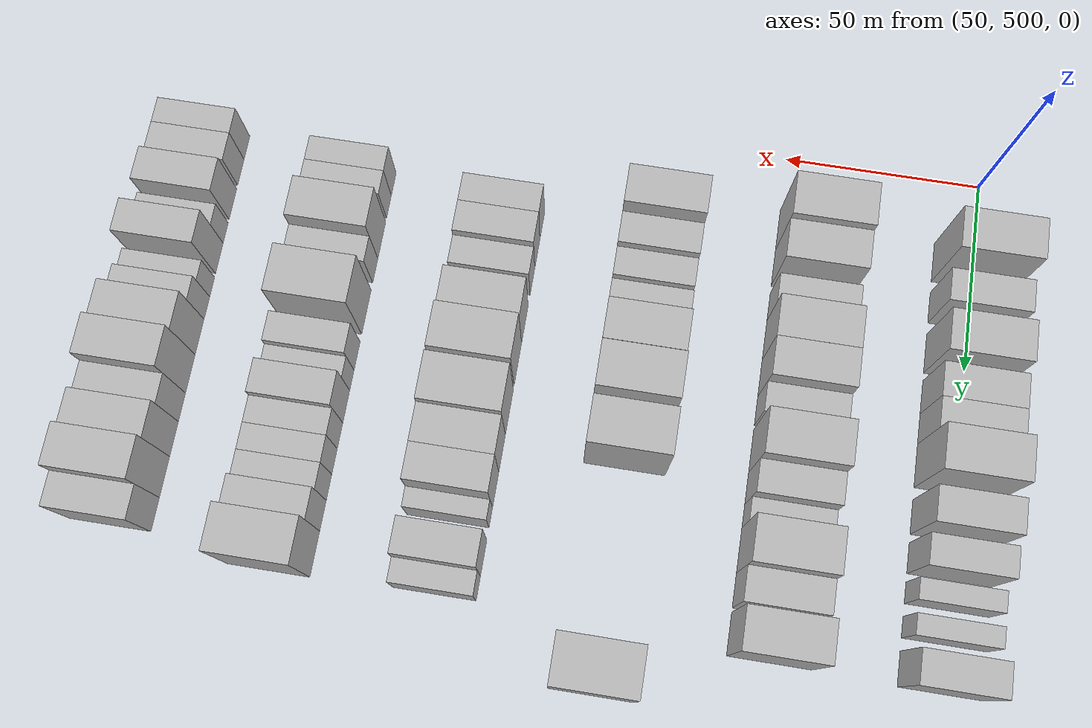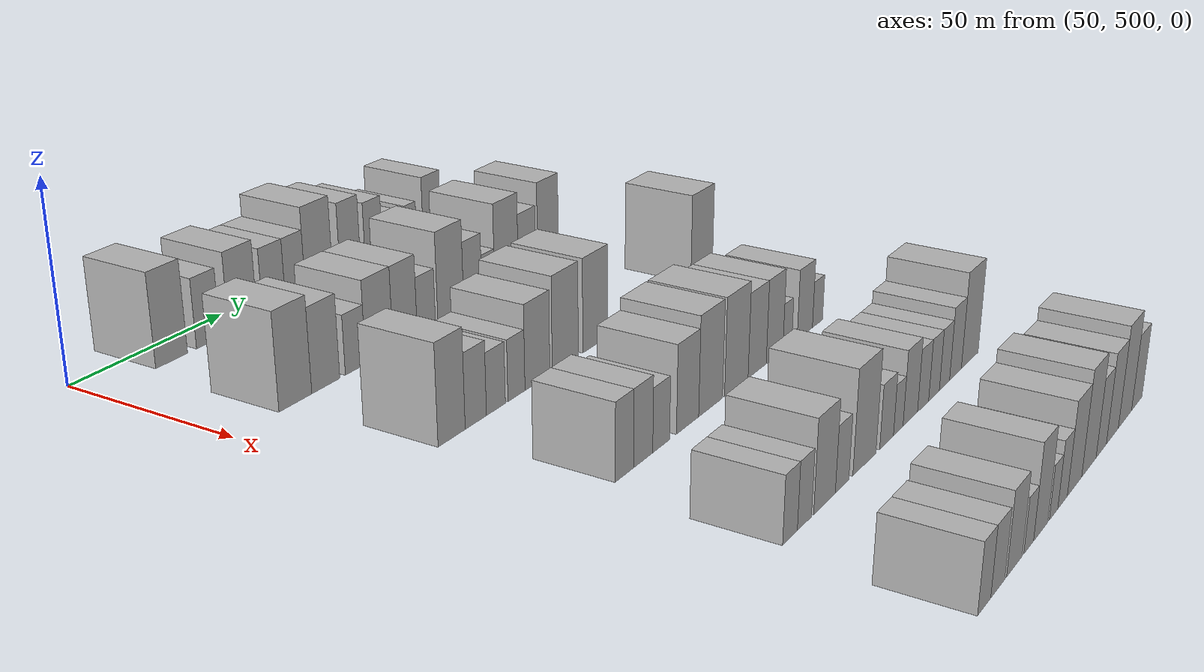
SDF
<sdf version="1.6">
 <world name="default">
  <model name="building_132">
   <static>1</static>
   <pose>50.0000 522.5997 0 0.000000 0.000000 0.000000</pose>
   <link name="link">
    <pose>0 0 12.00 0 0 0</pose>
    <collision name="collision"><geometry><box><size>20.0000 10.4409 24.0000</size></box></geometry></collision>
    <visual name="visual">
     <cast_shadows>0</cast_shadows>
     <geometry><box><size>20.0000 10.4409 24.0000</size></box></geometry>
     <material>
      <script>
       <uri>model://HANNAS_wall/materials/scripts</uri>
       <uri>model://HANNAS_wall/materials/textures</uri>
       <name>vrc/HANNAS_wall</name>
      </script>
     </material>
    </visual>
   </link>
  </model>
  <model name="building_133">
   <static>1</static>
   <pose>50.0000 534.9122 0 0.000000 0.000000 0.000000</pose>
   <link name="link">
    <pose>0 0 9.00 0 0 0</pose>
    <collision name="collision"><geometry><box><size>20.0000 8.1841 18.0000</size></box></geometry></collision>
    <visual name="visual">
     <cast_shadows>0</cast_shadows>
     <geometry><box><size>20.0000 8.1841 18.0000</size></box></geometry>
     <material>
      <script>
       <uri>model://HANNAS_wall/materials/scripts</uri>
       <uri>model://HANNAS_wall/materials/textures</uri>
       <name>vrc/HANNAS_wall</name>
      </script>
     </material>
    </visual>
   </link>
  </model>
  <model name="building_134">
   <static>1</static>
   <pose>50.0000 547.1386 0 0.000000 0.000000 0.000000</pose>
   <link name="link">
    <pose>0 0 10.50 0 0 0</pose>
    <collision name="collision"><geometry><box><size>20.0000 10.2687 21.0000</size></box></geometry></collision>
    <visual name="visual">
     <cast_shadows>0</cast_shadows>
     <geometry><box><size>20.0000 10.2687 21.0000</size></box></geometry>
     <material>
      <script>
       <uri>model://HANNAS_wall/materials/scripts</uri>
       <uri>model://HANNAS_wall/materials/textures</uri>
       <name>vrc/HANNAS_wall</name>
      </script>
     </material>
    </visual>
   </link>
  </model>
  <model name="building_135">
   <static>1</static>
   <pose>50.0000 558.5640 0 0.000000 0.000000 0.000000</pose>
   <link name="link">
    <pose>0 0 9.00 0 0 0</pose>
    <collision name="collision"><geometry><box><size>20.0000 8.5822 18.0000</size></box></geometry></collision>
    <visual name="visual">
     <cast_shadows>0</cast_shadows>
     <geometry><box><size>20.0000 8.5822 18.0000</size></box></geometry>
     <material>
      <script>
       <uri>model://HANNAS_wall/materials/scripts</uri>
       <uri>model://HANNAS_wall/materials/textures</uri>
       <name>vrc/HANNAS_wall</name>
      </script>
     </material>
    </visual>
   </link>
  </model>
  <model name="building_136">
   <static>1</static>
   <pose>50.0000 566.7089 0 0.000000 0.000000 0.000000</pose>
   <link name="link">
    <pose>0 0 9.00 0 0 0</pose>
    <collision name="collision"><geometry><box><size>20.0000 7.7077 18.0000</size></box></geometry></collision>
    <visual name="visual">
     <cast_shadows>0</cast_shadows>
     <geometry><box><size>20.0000 7.7077 18.0000</size></box></geometry>
     <material>
      <script>
       <uri>model://HANNAS_wall/materials/scripts</uri>
       <uri>model://HANNAS_wall/materials/textures</uri>
       <name>vrc/HANNAS_wall</name>
      </script>
     </material>
    </visual>
   </link>
  </model>
  <model name="building_137">
   <static>1</static>
   <pose>50.0000 576.0219 0 0.000000 0.000000 0.000000</pose>
   <link name="link">
    <pose>0 0 12.00 0 0 0</pose>
    <collision name="collision"><geometry><box><size>20.0000 10.9183 24.0000</size></box></geometry></collision>
    <visual name="visual">
     <cast_shadows>0</cast_shadows>
     <geometry><box><size>20.0000 10.9183 24.0000</size></box></geometry>
     <material>
      <script>
       <uri>model://HANNAS_wall/materials/scripts</uri>
       <uri>model://HANNAS_wall/materials/textures</uri>
       <name>vrc/HANNAS_wall</name>
      </script>
     </material>
    </visual>
   </link>
  </model>
  <model name="building_138">
   <static>1</static>
   <pose>50.0000 588.7377 0 0.000000 0.000000 0.000000</pose>
   <link name="link">
    <pose>0 0 10.50 0 0 0</pose>
    <collision name="collision"><geometry><box><size>20.0000 8.5133 21.0000</size></box></geometry></collision>
    <visual name="visual">
     <cast_shadows>0</cast_shadows>
     <geometry><box><size>20.0000 8.5133 21.0000</size></box></geometry>
     <material>
      <script>
       <uri>model://HANNAS_wall/materials/scripts</uri>
       <uri>model://HANNAS_wall/materials/textures</uri>
       <name>vrc/HANNAS_wall</name>
      </script>
     </material>
    </visual>
   </link>
  </model>
  <model name="building_139">
   <static>1</static>
   <pose>50.0000 598.7402 0 0.000000 0.000000 0.000000</pose>
   <link name="link">
    <pose>0 0 9.00 0 0 0</pose>
    <collision name="collision"><geometry><box><size>20.0000 7.4918 18.0000</size></box></geometry></collision>
    <visual name="visual">
     <cast_shadows>0</cast_shadows>
     <geometry><box><size>20.0000 7.4918 18.0000</size></box></geometry>
     <material>
      <script>
       <uri>model://HANNAS_wall/materials/scripts</uri>
       <uri>model://HANNAS_wall/materials/textures</uri>
       <name>vrc/HANNAS_wall</name>
      </script>
     </material>
    </visual>
   </link>
  </model>
  <model name="building_140">
   <static>1</static>
   <pose>50.0000 607.0550 0 0.000000 0.000000 0.000000</pose>
   <link name="link">
    <pose>0 0 6.00 0 0 0</pose>
    <collision name="collision"><geometry><box><size>20.0000 5.1379 12.0000</size></box></geometry></collision>
    <visual name="visual">
     <cast_shadows>0</cast_shadows>
     <geometry><box><size>20.0000 5.1379 12.0000</size></box></geometry>
     <material>
      <script>
       <uri>model://HANNAS_wall/materials/scripts</uri>
       <uri>model://HANNAS_wall/materials/textures</uri>
       <name>vrc/HANNAS_wall</name>
      </script>
     </material>
    </visual>
   </link>
  </model>
  <model name="building_141">
   <static>1</static>
   <pose>50.0000 615.1500 0 0.000000 0.000000 0.000000</pose>
   <link name="link">
    <pose>0 0 6.00 0 0 0</pose>
    <collision name="collision"><geometry><box><size>20.0000 5.0520 12.0000</size></box></geometry></collision>
    <visual name="visual">
     <cast_shadows>0</cast_shadows>
     <geometry><box><size>20.0000 5.0520 12.0000</size></box></geometry>
     <material>
      <script>
       <uri>model://HANNAS_wall/materials/scripts</uri>
       <uri>model://HANNAS_wall/materials/textures</uri>
       <name>vrc/HANNAS_wall</name>
      </script>
     </material>
    </visual>
   </link>
  </model>
  <model name="building_142">
   <static>1</static>
   <pose>50.0000 624.8124 0 0.000000 0.000000 0.000000</pose>
   <link name="link">
    <pose>0 0 9.00 0 0 0</pose>
    <collision name="collision"><geometry><box><size>20.0000 8.2729 18.0000</size></box></geometry></collision>
    <visual name="visual">
     <cast_shadows>0</cast_shadows>
     <geometry><box><size>20.0000 8.2729 18.0000</size></box></geometry>
     <material>
      <script>
       <uri>model://HANNAS_wall/materials/scripts</uri>
       <uri>model://HANNAS_wall/materials/textures</uri>
       <name>vrc/HANNAS_wall</name>
      </script>
     </material>
    </visual>
   </link>
  </model>
  <model name="building_266">
   <static>1</static>
   <pose>90.0000 520.1186 0 0.000000 0.000000 0.000000</pose>
   <link name="link">
    <pose>0 0 12.00 0 0 0</pose>
    <collision name="collision"><geometry><box><size>20.0000 11.0788 24.0000</size></box></geometry></collision>
    <visual name="visual">
     <cast_shadows>0</cast_shadows>
     <geometry><box><size>20.0000 11.0788 24.0000</size></box></geometry>
     <material>
      <script>
       <uri>model://HANNAS_wall/materials/scripts</uri>
       <uri>model://HANNAS_wall/materials/textures</uri>
       <name>vrc/HANNAS_wall</name>
      </script>
     </material>
    </visual>
   </link>
  </model>
  <model name="building_267">
   <static>1</static>
   <pose>90.0000 530.5757 0 0.000000 0.000000 0.000000</pose>
   <link name="link">
    <pose>0 0 10.50 0 0 0</pose>
    <collision name="collision"><geometry><box><size>20.0000 9.8355 21.0000</size></box></geometry></collision>
    <visual name="visual">
     <cast_shadows>0</cast_shadows>
     <geometry><box><size>20.0000 9.8355 21.0000</size></box></geometry>
     <material>
      <script>
       <uri>model://HANNAS_wall/materials/scripts</uri>
       <uri>model://HANNAS_wall/materials/textures</uri>
       <name>vrc/HANNAS_wall</name>
      </script>
     </material>
    </visual>
   </link>
  </model>
  <model name="building_268">
   <static>1</static>
   <pose>90.0000 541.2150 0 0.000000 0.000000 0.000000</pose>
   <link name="link">
    <pose>0 0 7.50 0 0 0</pose>
    <collision name="collision"><geometry><box><size>20.0000 7.4430 15.0000</size></box></geometry></collision>
    <visual name="visual">
     <cast_shadows>0</cast_shadows>
     <geometry><box><size>20.0000 7.4430 15.0000</size></box></geometry>
     <material>
      <script>
       <uri>model://HANNAS_wall/materials/scripts</uri>
       <uri>model://HANNAS_wall/materials/textures</uri>
       <name>vrc/HANNAS_wall</name>
      </script>
     </material>
    </visual>
   </link>
  </model>
  <model name="building_269">
   <static>1</static>
   <pose>90.0000 550.1425 0 0.000000 0.000000 0.000000</pose>
   <link name="link">
    <pose>0 0 10.50 0 0 0</pose>
    <collision name="collision"><geometry><box><size>20.0000 10.4120 21.0000</size></box></geometry></collision>
    <visual name="visual">
     <cast_shadows>0</cast_shadows>
     <geometry><box><size>20.0000 10.4120 21.0000</size></box></geometry>
     <material>
      <script>
       <uri>model://HANNAS_wall/materials/scripts</uri>
       <uri>model://HANNAS_wall/materials/textures</uri>
       <name>vrc/HANNAS_wall</name>
      </script>
     </material>
    </visual>
   </link>
  </model>
  <model name="building_270">
   <static>1</static>
   <pose>90.0000 560.1361 0 0.000000 0.000000 0.000000</pose>
   <link name="link">
    <pose>0 0 10.50 0 0 0</pose>
    <collision name="collision"><geometry><box><size>20.0000 9.5751 21.0000</size></box></geometry></collision>
    <visual name="visual">
     <cast_shadows>0</cast_shadows>
     <geometry><box><size>20.0000 9.5751 21.0000</size></box></geometry>
     <material>
      <script>
       <uri>model://HANNAS_wall/materials/scripts</uri>
       <uri>model://HANNAS_wall/materials/textures</uri>
       <name>vrc/HANNAS_wall</name>
      </script>
     </material>
    </visual>
   </link>
  </model>
  <model name="building_271">
   <static>1</static>
   <pose>90.0000 568.6189 0 0.000000 0.000000 0.000000</pose>
   <link name="link">
    <pose>0 0 7.50 0 0 0</pose>
    <collision name="collision"><geometry><box><size>20.0000 7.3906 15.0000</size></box></geometry></collision>
    <visual name="visual">
     <cast_shadows>0</cast_shadows>
     <geometry><box><size>20.0000 7.3906 15.0000</size></box></geometry>
     <material>
      <script>
       <uri>model://HANNAS_wall/materials/scripts</uri>
       <uri>model://HANNAS_wall/materials/textures</uri>
       <name>vrc/HANNAS_wall</name>
      </script>
     </material>
    </visual>
   </link>
  </model>
  <model name="building_272">
   <static>1</static>
   <pose>90.0000 578.7879 0 0.000000 0.000000 0.000000</pose>
   <link name="link">
    <pose>0 0 12.00 0 0 0</pose>
    <collision name="collision"><geometry><box><size>20.0000 10.9474 24.0000</size></box></geometry></collision>
    <visual name="visual">
     <cast_shadows>0</cast_shadows>
     <geometry><box><size>20.0000 10.9474 24.0000</size></box></geometry>
     <material>
      <script>
       <uri>model://HANNAS_wall/materials/scripts</uri>
       <uri>model://HANNAS_wall/materials/textures</uri>
       <name>vrc/HANNAS_wall</name>
      </script>
     </material>
    </visual>
   </link>
  </model>
  <model name="building_273">
   <static>1</static>
   <pose>90.0000 588.2281 0 0.000000 0.000000 0.000000</pose>
   <link name="link">
    <pose>0 0 9.00 0 0 0</pose>
    <collision name="collision"><geometry><box><size>20.0000 7.9329 18.0000</size></box></geometry></collision>
    <visual name="visual">
     <cast_shadows>0</cast_shadows>
     <geometry><box><size>20.0000 7.9329 18.0000</size></box></geometry>
     <material>
      <script>
       <uri>model://HANNAS_wall/materials/scripts</uri>
       <uri>model://HANNAS_wall/materials/textures</uri>
       <name>vrc/HANNAS_wall</name>
      </script>
     </material>
    </visual>
   </link>
  </model>
  <model name="building_274">
   <static>1</static>
   <pose>90.0000 595.0700 0 0.000000 0.000000 0.000000</pose>
   <link name="link">
    <pose>0 0 6.00 0 0 0</pose>
    <collision name="collision"><geometry><box><size>20.0000 5.7510 12.0000</size></box></geometry></collision>
    <visual name="visual">
     <cast_shadows>0</cast_shadows>
     <geometry><box><size>20.0000 5.7510 12.0000</size></box></geometry>
     <material>
      <script>
       <uri>model://HANNAS_wall/materials/scripts</uri>
       <uri>model://HANNAS_wall/materials/textures</uri>
       <name>vrc/HANNAS_wall</name>
      </script>
     </material>
    </visual>
   </link>
  </model>
  <model name="building_275">
   <static>1</static>
   <pose>90.0000 603.3871 0 0.000000 0.000000 0.000000</pose>
   <link name="link">
    <pose>0 0 12.00 0 0 0</pose>
    <collision name="collision"><geometry><box><size>20.0000 10.8831 24.0000</size></box></geometry></collision>
    <visual name="visual">
     <cast_shadows>0</cast_shadows>
     <geometry><box><size>20.0000 10.8831 24.0000</size></box></geometry>
     <material>
      <script>
       <uri>model://HANNAS_wall/materials/scripts</uri>
       <uri>model://HANNAS_wall/materials/textures</uri>
       <name>vrc/HANNAS_wall</name>
      </script>
     </material>
    </visual>
   </link>
  </model>
  <model name="building_276">
   <static>1</static>
   <pose>90.0000 612.9606 0 0.000000 0.000000 0.000000</pose>
   <link name="link">
    <pose>0 0 9.00 0 0 0</pose>
    <collision name="collision"><geometry><box><size>20.0000 8.2639 18.0000</size></box></geometry></collision>
    <visual name="visual">
     <cast_shadows>0</cast_shadows>
     <geometry><box><size>20.0000 8.2639 18.0000</size></box></geometry>
     <material>
      <script>
       <uri>model://HANNAS_wall/materials/scripts</uri>
       <uri>model://HANNAS_wall/materials/textures</uri>
       <name>vrc/HANNAS_wall</name>
      </script>
     </material>
    </visual>
   </link>
  </model>
  <model name="building_277">
   <static>1</static>
   <pose>90.0000 623.2012 0 0.000000 0.000000 0.000000</pose>
   <link name="link">
    <pose>0 0 12.00 0 0 0</pose>
    <collision name="collision"><geometry><box><size>20.0000 10.2173 24.0000</size></box></geometry></collision>
    <visual name="visual">
     <cast_shadows>0</cast_shadows>
     <geometry><box><size>20.0000 10.2173 24.0000</size></box></geometry>
     <material>
      <script>
       <uri>model://HANNAS_wall/materials/scripts</uri>
       <uri>model://HANNAS_wall/materials/textures</uri>
       <name>vrc/HANNAS_wall</name>
      </script>
     </material>
    </visual>
   </link>
  </model>
  <model name="building_402">
   <static>1</static>
   <pose>130.0000 524.0471 0 0.000000 0.000000 0.000000</pose>
   <link name="link">
    <pose>0 0 12.00 0 0 0</pose>
    <collision name="collision"><geometry><box><size>20.0000 9.8268 24.0000</size></box></geometry></collision>
    <visual name="visual">
     <cast_shadows>0</cast_shadows>
     <geometry><box><size>20.0000 9.8268 24.0000</size></box></geometry>
     <material>
      <script>
       <uri>model://HANNAS_wall/materials/scripts</uri>
       <uri>model://HANNAS_wall/materials/textures</uri>
       <name>vrc/HANNAS_wall</name>
      </script>
     </material>
    </visual>
   </link>
  </model>
  <model name="building_403">
   <static>1</static>
   <pose>130.0000 532.9498 0 0.000000 0.000000 0.000000</pose>
   <link name="link">
    <pose>0 0 9.00 0 0 0</pose>
    <collision name="collision"><geometry><box><size>20.0000 7.9787 18.0000</size></box></geometry></collision>
    <visual name="visual">
     <cast_shadows>0</cast_shadows>
     <geometry><box><size>20.0000 7.9787 18.0000</size></box></geometry>
     <material>
      <script>
       <uri>model://HANNAS_wall/materials/scripts</uri>
       <uri>model://HANNAS_wall/materials/textures</uri>
       <name>vrc/HANNAS_wall</name>
      </script>
     </material>
    </visual>
   </link>
  </model>
  <model name="building_404">
   <static>1</static>
   <pose>130.0000 540.6071 0 0.000000 0.000000 0.000000</pose>
   <link name="link">
    <pose>0 0 7.50 0 0 0</pose>
    <collision name="collision"><geometry><box><size>20.0000 7.3360 15.0000</size></box></geometry></collision>
    <visual name="visual">
     <cast_shadows>0</cast_shadows>
     <geometry><box><size>20.0000 7.3360 15.0000</size></box></geometry>
     <material>
      <script>
       <uri>model://HANNAS_wall/materials/scripts</uri>
       <uri>model://HANNAS_wall/materials/textures</uri>
       <name>vrc/HANNAS_wall</name>
      </script>
     </material>
    </visual>
   </link>
  </model>
  <model name="building_405">
   <static>1</static>
   <pose>130.0000 548.7007 0 0.000000 0.000000 0.000000</pose>
   <link name="link">
    <pose>0 0 7.50 0 0 0</pose>
    <collision name="collision"><geometry><box><size>20.0000 6.8511 15.0000</size></box></geometry></collision>
    <visual name="visual">
     <cast_shadows>0</cast_shadows>
     <geometry><box><size>20.0000 6.8511 15.0000</size></box></geometry>
     <material>
      <script>
       <uri>model://HANNAS_wall/materials/scripts</uri>
       <uri>model://HANNAS_wall/materials/textures</uri>
       <name>vrc/HANNAS_wall</name>
      </script>
     </material>
    </visual>
   </link>
  </model>
  <model name="building_406">
   <static>1</static>
   <pose>130.0000 557.2874 0 0.000000 0.000000 0.000000</pose>
   <link name="link">
    <pose>0 0 10.50 0 0 0</pose>
    <collision name="collision"><geometry><box><size>20.0000 10.3224 21.0000</size></box></geometry></collision>
    <visual name="visual">
     <cast_shadows>0</cast_shadows>
     <geometry><box><size>20.0000 10.3224 21.0000</size></box></geometry>
     <material>
      <script>
       <uri>model://HANNAS_wall/materials/scripts</uri>
       <uri>model://HANNAS_wall/materials/textures</uri>
       <name>vrc/HANNAS_wall</name>
      </script>
     </material>
    </visual>
   </link>
  </model>
  <model name="building_407">
   <static>1</static>
   <pose>130.0000 569.1102 0 0.000000 0.000000 0.000000</pose>
   <link name="link">
    <pose>0 0 12.00 0 0 0</pose>
    <collision name="collision"><geometry><box><size>20.0000 11.3232 24.0000</size></box></geometry></collision>
    <visual name="visual">
     <cast_shadows>0</cast_shadows>
     <geometry><box><size>20.0000 11.3232 24.0000</size></box></geometry>
     <material>
      <script>
       <uri>model://HANNAS_wall/materials/scripts</uri>
       <uri>model://HANNAS_wall/materials/textures</uri>
       <name>vrc/HANNAS_wall</name>
      </script>
     </material>
    </visual>
   </link>
  </model>
  <model name="building_408">
   <static>1</static>
   <pose>130.0000 582.4760 0 0.000000 0.000000 0.000000</pose>
   <link name="link">
    <pose>0 0 12.00 0 0 0</pose>
    <collision name="collision"><geometry><box><size>20.0000 11.4084 24.0000</size></box></geometry></collision>
    <visual name="visual">
     <cast_shadows>0</cast_shadows>
     <geometry><box><size>20.0000 11.4084 24.0000</size></box></geometry>
     <material>
      <script>
       <uri>model://HANNAS_wall/materials/scripts</uri>
       <uri>model://HANNAS_wall/materials/textures</uri>
       <name>vrc/HANNAS_wall</name>
      </script>
     </material>
    </visual>
   </link>
  </model>
  <model name="building_409">
   <static>1</static>
   <pose>130.0000 636.1737 0 0.000000 0.000000 0.000000</pose>
   <link name="link">
    <pose>0 0 12.00 0 0 0</pose>
    <collision name="collision"><geometry><box><size>20.0000 11.9957 24.0000</size></box></geometry></collision>
    <visual name="visual">
     <cast_shadows>0</cast_shadows>
     <geometry><box><size>20.0000 11.9957 24.0000</size></box></geometry>
     <material>
      <script>
       <uri>model://HANNAS_wall/materials/scripts</uri>
       <uri>model://HANNAS_wall/materials/textures</uri>
       <name>vrc/HANNAS_wall</name>
      </script>
     </material>
    </visual>
   </link>
  </model>
  <model name="building_536">
   <static>1</static>
   <pose>170.0000 528.7925 0 0.000000 0.000000 0.000000</pose>
   <link name="link">
    <pose>0 0 9.00 0 0 0</pose>
    <collision name="collision"><geometry><box><size>20.0000 7.3141 18.0000</size></box></geometry></collision>
    <visual name="visual">
     <cast_shadows>0</cast_shadows>
     <geometry><box><size>20.0000 7.3141 18.0000</size></box></geometry>
     <material>
      <script>
       <uri>model://HANNAS_wall/materials/scripts</uri>
       <uri>model://HANNAS_wall/materials/textures</uri>
       <name>vrc/HANNAS_wall</name>
      </script>
     </material>
    </visual>
   </link>
  </model>
  <model name="building_537">
   <static>1</static>
   <pose>170.0000 536.4276 0 0.000000 0.000000 0.000000</pose>
   <link name="link">
    <pose>0 0 9.00 0 0 0</pose>
    <collision name="collision"><geometry><box><size>20.0000 7.9559 18.0000</size></box></geometry></collision>
    <visual name="visual">
     <cast_shadows>0</cast_shadows>
     <geometry><box><size>20.0000 7.9559 18.0000</size></box></geometry>
     <material>
      <script>
       <uri>model://HANNAS_wall/materials/scripts</uri>
       <uri>model://HANNAS_wall/materials/textures</uri>
       <name>vrc/HANNAS_wall</name>
      </script>
     </material>
    </visual>
   </link>
  </model>
  <model name="building_538">
   <static>1</static>
   <pose>170.0000 544.0080 0 0.000000 0.000000 0.000000</pose>
   <link name="link">
    <pose>0 0 7.50 0 0 0</pose>
    <collision name="collision"><geometry><box><size>20.0000 7.2049 15.0000</size></box></geometry></collision>
    <visual name="visual">
     <cast_shadows>0</cast_shadows>
     <geometry><box><size>20.0000 7.2049 15.0000</size></box></geometry>
     <material>
      <script>
       <uri>model://HANNAS_wall/materials/scripts</uri>
       <uri>model://HANNAS_wall/materials/textures</uri>
       <name>vrc/HANNAS_wall</name>
      </script>
     </material>
    </visual>
   </link>
  </model>
  <model name="building_539">
   <static>1</static>
   <pose>170.0000 555.6023 0 0.000000 0.000000 0.000000</pose>
   <link name="link">
    <pose>0 0 10.50 0 0 0</pose>
    <collision name="collision"><geometry><box><size>20.0000 9.9838 21.0000</size></box></geometry></collision>
    <visual name="visual">
     <cast_shadows>0</cast_shadows>
     <geometry><box><size>20.0000 9.9838 21.0000</size></box></geometry>
     <material>
      <script>
       <uri>model://HANNAS_wall/materials/scripts</uri>
       <uri>model://HANNAS_wall/materials/textures</uri>
       <name>vrc/HANNAS_wall</name>
      </script>
     </material>
    </visual>
   </link>
  </model>
  <model name="building_540">
   <static>1</static>
   <pose>170.0000 566.1823 0 0.000000 0.000000 0.000000</pose>
   <link name="link">
    <pose>0 0 12.00 0 0 0</pose>
    <collision name="collision"><geometry><box><size>20.0000 11.1762 24.0000</size></box></geometry></collision>
    <visual name="visual">
     <cast_shadows>0</cast_shadows>
     <geometry><box><size>20.0000 11.1762 24.0000</size></box></geometry>
     <material>
      <script>
       <uri>model://HANNAS_wall/materials/scripts</uri>
       <uri>model://HANNAS_wall/materials/textures</uri>
       <name>vrc/HANNAS_wall</name>
      </script>
     </material>
    </visual>
   </link>
  </model>
  <model name="building_541">
   <static>1</static>
   <pose>170.0000 578.5876 0 0.000000 0.000000 0.000000</pose>
   <link name="link">
    <pose>0 0 12.00 0 0 0</pose>
    <collision name="collision"><geometry><box><size>20.0000 11.6344 24.0000</size></box></geometry></collision>
    <visual name="visual">
     <cast_shadows>0</cast_shadows>
     <geometry><box><size>20.0000 11.6344 24.0000</size></box></geometry>
     <material>
      <script>
       <uri>model://HANNAS_wall/materials/scripts</uri>
       <uri>model://HANNAS_wall/materials/textures</uri>
       <name>vrc/HANNAS_wall</name>
      </script>
     </material>
    </visual>
   </link>
  </model>
  <model name="building_542">
   <static>1</static>
   <pose>170.0000 589.0901 0 0.000000 0.000000 0.000000</pose>
   <link name="link">
    <pose>0 0 10.50 0 0 0</pose>
    <collision name="collision"><geometry><box><size>20.0000 9.3705 21.0000</size></box></geometry></collision>
    <visual name="visual">
     <cast_shadows>0</cast_shadows>
     <geometry><box><size>20.0000 9.3705 21.0000</size></box></geometry>
     <material>
      <script>
       <uri>model://HANNAS_wall/materials/scripts</uri>
       <uri>model://HANNAS_wall/materials/textures</uri>
       <name>vrc/HANNAS_wall</name>
      </script>
     </material>
    </visual>
   </link>
  </model>
  <model name="building_543">
   <static>1</static>
   <pose>170.0000 598.2019 0 0.000000 0.000000 0.000000</pose>
   <link name="link">
    <pose>0 0 10.50 0 0 0</pose>
    <collision name="collision"><geometry><box><size>20.0000 8.8532 21.0000</size></box></geometry></collision>
    <visual name="visual">
     <cast_shadows>0</cast_shadows>
     <geometry><box><size>20.0000 8.8532 21.0000</size></box></geometry>
     <material>
      <script>
       <uri>model://HANNAS_wall/materials/scripts</uri>
       <uri>model://HANNAS_wall/materials/textures</uri>
       <name>vrc/HANNAS_wall</name>
      </script>
     </material>
    </visual>
   </link>
  </model>
  <model name="building_544">
   <static>1</static>
   <pose>170.0000 605.0665 0 0.000000 0.000000 0.000000</pose>
   <link name="link">
    <pose>0 0 6.00 0 0 0</pose>
    <collision name="collision"><geometry><box><size>20.0000 4.8760 12.0000</size></box></geometry></collision>
    <visual name="visual">
     <cast_shadows>0</cast_shadows>
     <geometry><box><size>20.0000 4.8760 12.0000</size></box></geometry>
     <material>
      <script>
       <uri>model://HANNAS_wall/materials/scripts</uri>
       <uri>model://HANNAS_wall/materials/textures</uri>
       <name>vrc/HANNAS_wall</name>
      </script>
     </material>
    </visual>
   </link>
  </model>
  <model name="building_545">
   <static>1</static>
   <pose>170.0000 614.8591 0 0.000000 0.000000 0.000000</pose>
   <link name="link">
    <pose>0 0 9.00 0 0 0</pose>
    <collision name="collision"><geometry><box><size>20.0000 8.7093 18.0000</size></box></geometry></collision>
    <visual name="visual">
     <cast_shadows>0</cast_shadows>
     <geometry><box><size>20.0000 8.7093 18.0000</size></box></geometry>
     <material>
      <script>
       <uri>model://HANNAS_wall/materials/scripts</uri>
       <uri>model://HANNAS_wall/materials/textures</uri>
       <name>vrc/HANNAS_wall</name>
      </script>
     </material>
    </visual>
   </link>
  </model>
  <model name="building_546">
   <static>1</static>
   <pose>170.0000 622.1536 0 0.000000 0.000000 0.000000</pose>
   <link name="link">
    <pose>0 0 6.00 0 0 0</pose>
    <collision name="collision"><geometry><box><size>20.0000 5.8798 12.0000</size></box></geometry></collision>
    <visual name="visual">
     <cast_shadows>0</cast_shadows>
     <geometry><box><size>20.0000 5.8798 12.0000</size></box></geometry>
     <material>
      <script>
       <uri>model://HANNAS_wall/materials/scripts</uri>
       <uri>model://HANNAS_wall/materials/textures</uri>
       <name>vrc/HANNAS_wall</name>
      </script>
     </material>
    </visual>
   </link>
  </model>
  <model name="building_670">
   <static>1</static>
   <pose>210.0000 523.2266 0 0.000000 0.000000 0.000000</pose>
   <link name="link">
    <pose>0 0 7.50 0 0 0</pose>
    <collision name="collision"><geometry><box><size>20.0000 6.4651 15.0000</size></box></geometry></collision>
    <visual name="visual">
     <cast_shadows>0</cast_shadows>
     <geometry><box><size>20.0000 6.4651 15.0000</size></box></geometry>
     <material>
      <script>
       <uri>model://HANNAS_wall/materials/scripts</uri>
       <uri>model://HANNAS_wall/materials/textures</uri>
       <name>vrc/HANNAS_wall</name>
      </script>
     </material>
    </visual>
   </link>
  </model>
  <model name="building_671">
   <static>1</static>
   <pose>210.0000 529.6423 0 0.000000 0.000000 0.000000</pose>
   <link name="link">
    <pose>0 0 7.50 0 0 0</pose>
    <collision name="collision"><geometry><box><size>20.0000 6.3664 15.0000</size></box></geometry></collision>
    <visual name="visual">
     <cast_shadows>0</cast_shadows>
     <geometry><box><size>20.0000 6.3664 15.0000</size></box></geometry>
     <material>
      <script>
       <uri>model://HANNAS_wall/materials/scripts</uri>
       <uri>model://HANNAS_wall/materials/textures</uri>
       <name>vrc/HANNAS_wall</name>
      </script>
     </material>
    </visual>
   </link>
  </model>
  <model name="building_672">
   <static>1</static>
   <pose>210.0000 538.9405 0 0.000000 0.000000 0.000000</pose>
   <link name="link">
    <pose>0 0 10.50 0 0 0</pose>
    <collision name="collision"><geometry><box><size>20.0000 10.2300 21.0000</size></box></geometry></collision>
    <visual name="visual">
     <cast_shadows>0</cast_shadows>
     <geometry><box><size>20.0000 10.2300 21.0000</size></box></geometry>
     <material>
      <script>
       <uri>model://HANNAS_wall/materials/scripts</uri>
       <uri>model://HANNAS_wall/materials/textures</uri>
       <name>vrc/HANNAS_wall</name>
      </script>
     </material>
    </visual>
   </link>
  </model>
  <model name="building_673">
   <static>1</static>
   <pose>210.0000 547.3690 0 0.000000 0.000000 0.000000</pose>
   <link name="link">
    <pose>0 0 7.50 0 0 0</pose>
    <collision name="collision"><geometry><box><size>20.0000 6.6270 15.0000</size></box></geometry></collision>
    <visual name="visual">
     <cast_shadows>0</cast_shadows>
     <geometry><box><size>20.0000 6.6270 15.0000</size></box></geometry>
     <material>
      <script>
       <uri>model://HANNAS_wall/materials/scripts</uri>
       <uri>model://HANNAS_wall/materials/textures</uri>
       <name>vrc/HANNAS_wall</name>
      </script>
     </material>
    </visual>
   </link>
  </model>
  <model name="building_674">
   <static>1</static>
   <pose>210.0000 558.6312 0 0.000000 0.000000 0.000000</pose>
   <link name="link">
    <pose>0 0 12.00 0 0 0</pose>
    <collision name="collision"><geometry><box><size>20.0000 11.8973 24.0000</size></box></geometry></collision>
    <visual name="visual">
     <cast_shadows>0</cast_shadows>
     <geometry><box><size>20.0000 11.8973 24.0000</size></box></geometry>
     <material>
      <script>
       <uri>model://HANNAS_wall/materials/scripts</uri>
       <uri>model://HANNAS_wall/materials/textures</uri>
       <name>vrc/HANNAS_wall</name>
      </script>
     </material>
    </visual>
   </link>
  </model>
  <model name="building_675">
   <static>1</static>
   <pose>210.0000 570.3219 0 0.000000 0.000000 0.000000</pose>
   <link name="link">
    <pose>0 0 7.50 0 0 0</pose>
    <collision name="collision"><geometry><box><size>20.0000 7.4842 15.0000</size></box></geometry></collision>
    <visual name="visual">
     <cast_shadows>0</cast_shadows>
     <geometry><box><size>20.0000 7.4842 15.0000</size></box></geometry>
     <material>
      <script>
       <uri>model://HANNAS_wall/materials/scripts</uri>
       <uri>model://HANNAS_wall/materials/textures</uri>
       <name>vrc/HANNAS_wall</name>
      </script>
     </material>
    </visual>
   </link>
  </model>
  <model name="building_676">
   <static>1</static>
   <pose>210.0000 576.7188 0 0.000000 0.000000 0.000000</pose>
   <link name="link">
    <pose>0 0 6.00 0 0 0</pose>
    <collision name="collision"><geometry><box><size>20.0000 5.3095 12.0000</size></box></geometry></collision>
    <visual name="visual">
     <cast_shadows>0</cast_shadows>
     <geometry><box><size>20.0000 5.3095 12.0000</size></box></geometry>
     <material>
      <script>
       <uri>model://HANNAS_wall/materials/scripts</uri>
       <uri>model://HANNAS_wall/materials/textures</uri>
       <name>vrc/HANNAS_wall</name>
      </script>
     </material>
    </visual>
   </link>
  </model>
  <model name="building_677">
   <static>1</static>
   <pose>210.0000 583.5469 0 0.000000 0.000000 0.000000</pose>
   <link name="link">
    <pose>0 0 9.00 0 0 0</pose>
    <collision name="collision"><geometry><box><size>20.0000 8.3467 18.0000</size></box></geometry></collision>
    <visual name="visual">
     <cast_shadows>0</cast_shadows>
     <geometry><box><size>20.0000 8.3467 18.0000</size></box></geometry>
     <material>
      <script>
       <uri>model://HANNAS_wall/materials/scripts</uri>
       <uri>model://HANNAS_wall/materials/textures</uri>
       <name>vrc/HANNAS_wall</name>
      </script>
     </material>
    </visual>
   </link>
  </model>
  <model name="building_678">
   <static>1</static>
   <pose>210.0000 591.0155 0 0.000000 0.000000 0.000000</pose>
   <link name="link">
    <pose>0 0 7.50 0 0 0</pose>
    <collision name="collision"><geometry><box><size>20.0000 6.5906 15.0000</size></box></geometry></collision>
    <visual name="visual">
     <cast_shadows>0</cast_shadows>
     <geometry><box><size>20.0000 6.5906 15.0000</size></box></geometry>
     <material>
      <script>
       <uri>model://HANNAS_wall/materials/scripts</uri>
       <uri>model://HANNAS_wall/materials/textures</uri>
       <name>vrc/HANNAS_wall</name>
      </script>
     </material>
    </visual>
   </link>
  </model>
  <model name="building_679">
   <static>1</static>
   <pose>210.0000 597.5694 0 0.000000 0.000000 0.000000</pose>
   <link name="link">
    <pose>0 0 7.50 0 0 0</pose>
    <collision name="collision"><geometry><box><size>20.0000 6.5172 15.0000</size></box></geometry></collision>
    <visual name="visual">
     <cast_shadows>0</cast_shadows>
     <geometry><box><size>20.0000 6.5172 15.0000</size></box></geometry>
     <material>
      <script>
       <uri>model://HANNAS_wall/materials/scripts</uri>
       <uri>model://HANNAS_wall/materials/textures</uri>
       <name>vrc/HANNAS_wall</name>
      </script>
     </material>
    </visual>
   </link>
  </model>
  <model name="building_680">
   <static>1</static>
   <pose>210.0000 604.0178 0 0.000000 0.000000 0.000000</pose>
   <link name="link">
    <pose>0 0 7.50 0 0 0</pose>
    <collision name="collision"><geometry><box><size>20.0000 6.3797 15.0000</size></box></geometry></collision>
    <visual name="visual">
     <cast_shadows>0</cast_shadows>
     <geometry><box><size>20.0000 6.3797 15.0000</size></box></geometry>
     <material>
      <script>
       <uri>model://HANNAS_wall/materials/scripts</uri>
       <uri>model://HANNAS_wall/materials/textures</uri>
       <name>vrc/HANNAS_wall</name>
      </script>
     </material>
    </visual>
   </link>
  </model>
  <model name="building_681">
   <static>1</static>
   <pose>210.0000 610.9843 0 0.000000 0.000000 0.000000</pose>
   <link name="link">
    <pose>0 0 9.00 0 0 0</pose>
    <collision name="collision"><geometry><box><size>20.0000 7.5532 18.0000</size></box></geometry></collision>
    <visual name="visual">
     <cast_shadows>0</cast_shadows>
     <geometry><box><size>20.0000 7.5532 18.0000</size></box></geometry>
     <material>
      <script>
       <uri>model://HANNAS_wall/materials/scripts</uri>
       <uri>model://HANNAS_wall/materials/textures</uri>
       <name>vrc/HANNAS_wall</name>
      </script>
     </material>
    </visual>
   </link>
  </model>
  <model name="building_682">
   <static>1</static>
   <pose>210.0000 620.3347 0 0.000000 0.000000 0.000000</pose>
   <link name="link">
    <pose>0 0 12.00 0 0 0</pose>
    <collision name="collision"><geometry><box><size>20.0000 11.1474 24.0000</size></box></geometry></collision>
    <visual name="visual">
     <cast_shadows>0</cast_shadows>
     <geometry><box><size>20.0000 11.1474 24.0000</size></box></geometry>
     <material>
      <script>
       <uri>model://HANNAS_wall/materials/scripts</uri>
       <uri>model://HANNAS_wall/materials/textures</uri>
       <name>vrc/HANNAS_wall</name>
      </script>
     </material>
    </visual>
   </link>
  </model>
  <model name="building_807">
   <static>1</static>
   <pose>250.0000 519.1342 0 0.000000 0.000000 0.000000</pose>
   <link name="link">
    <pose>0 0 7.50 0 0 0</pose>
    <collision name="collision"><geometry><box><size>20.0000 6.7440 15.0000</size></box></geometry></collision>
    <visual name="visual">
     <cast_shadows>0</cast_shadows>
     <geometry><box><size>20.0000 6.7440 15.0000</size></box></geometry>
     <material>
      <script>
       <uri>model://HANNAS_wall/materials/scripts</uri>
       <uri>model://HANNAS_wall/materials/textures</uri>
       <name>vrc/HANNAS_wall</name>
      </script>
     </material>
    </visual>
   </link>
  </model>
  <model name="building_808">
   <static>1</static>
   <pose>250.0000 526.2136 0 0.000000 0.000000 0.000000</pose>
   <link name="link">
    <pose>0 0 7.50 0 0 0</pose>
    <collision name="collision"><geometry><box><size>20.0000 7.4148 15.0000</size></box></geometry></collision>
    <visual name="visual">
     <cast_shadows>0</cast_shadows>
     <geometry><box><size>20.0000 7.4148 15.0000</size></box></geometry>
     <material>
      <script>
       <uri>model://HANNAS_wall/materials/scripts</uri>
       <uri>model://HANNAS_wall/materials/textures</uri>
       <name>vrc/HANNAS_wall</name>
      </script>
     </material>
    </visual>
   </link>
  </model>
  <model name="building_809">
   <static>1</static>
   <pose>250.0000 535.2531 0 0.000000 0.000000 0.000000</pose>
   <link name="link">
    <pose>0 0 9.00 0 0 0</pose>
    <collision name="collision"><geometry><box><size>20.0000 8.6643 18.0000</size></box></geometry></collision>
    <visual name="visual">
     <cast_shadows>0</cast_shadows>
     <geometry><box><size>20.0000 8.6643 18.0000</size></box></geometry>
     <material>
      <script>
       <uri>model://HANNAS_wall/materials/scripts</uri>
       <uri>model://HANNAS_wall/materials/textures</uri>
       <name>vrc/HANNAS_wall</name>
      </script>
     </material>
    </visual>
   </link>
  </model>
  <model name="building_810">
   <static>1</static>
   <pose>250.0000 543.3923 0 0.000000 0.000000 0.000000</pose>
   <link name="link">
    <pose>0 0 6.00 0 0 0</pose>
    <collision name="collision"><geometry><box><size>20.0000 5.6141 12.0000</size></box></geometry></collision>
    <visual name="visual">
     <cast_shadows>0</cast_shadows>
     <geometry><box><size>20.0000 5.6141 12.0000</size></box></geometry>
     <material>
      <script>
       <uri>model://HANNAS_wall/materials/scripts</uri>
       <uri>model://HANNAS_wall/materials/textures</uri>
       <name>vrc/HANNAS_wall</name>
      </script>
     </material>
    </visual>
   </link>
  </model>
  <model name="building_811">
   <static>1</static>
   <pose>250.0000 550.4188 0 0.000000 0.000000 0.000000</pose>
   <link name="link">
    <pose>0 0 10.50 0 0 0</pose>
    <collision name="collision"><geometry><box><size>20.0000 8.4388 21.0000</size></box></geometry></collision>
    <visual name="visual">
     <cast_shadows>0</cast_shadows>
     <geometry><box><size>20.0000 8.4388 21.0000</size></box></geometry>
     <material>
      <script>
       <uri>model://HANNAS_wall/materials/scripts</uri>
       <uri>model://HANNAS_wall/materials/textures</uri>
       <name>vrc/HANNAS_wall</name>
      </script>
     </material>
    </visual>
   </link>
  </model>
  <model name="building_812">
   <static>1</static>
   <pose>250.0000 558.2951 0 0.000000 0.000000 0.000000</pose>
   <link name="link">
    <pose>0 0 6.00 0 0 0</pose>
    <collision name="collision"><geometry><box><size>20.0000 5.3138 12.0000</size></box></geometry></collision>
    <visual name="visual">
     <cast_shadows>0</cast_shadows>
     <geometry><box><size>20.0000 5.3138 12.0000</size></box></geometry>
     <material>
      <script>
       <uri>model://HANNAS_wall/materials/scripts</uri>
       <uri>model://HANNAS_wall/materials/textures</uri>
       <name>vrc/HANNAS_wall</name>
      </script>
     </material>
    </visual>
   </link>
  </model>
  <model name="building_813">
   <static>1</static>
   <pose>250.0000 563.9873 0 0.000000 0.000000 0.000000</pose>
   <link name="link">
    <pose>0 0 7.50 0 0 0</pose>
    <collision name="collision"><geometry><box><size>20.0000 6.0706 15.0000</size></box></geometry></collision>
    <visual name="visual">
     <cast_shadows>0</cast_shadows>
     <geometry><box><size>20.0000 6.0706 15.0000</size></box></geometry>
     <material>
      <script>
       <uri>model://HANNAS_wall/materials/scripts</uri>
       <uri>model://HANNAS_wall/materials/textures</uri>
       <name>vrc/HANNAS_wall</name>
      </script>
     </material>
    </visual>
   </link>
  </model>
  <model name="building_814">
   <static>1</static>
   <pose>250.0000 571.7594 0 0.000000 0.000000 0.000000</pose>
   <link name="link">
    <pose>0 0 10.50 0 0 0</pose>
    <collision name="collision"><geometry><box><size>20.0000 9.4736 21.0000</size></box></geometry></collision>
    <visual name="visual">
     <cast_shadows>0</cast_shadows>
     <geometry><box><size>20.0000 9.4736 21.0000</size></box></geometry>
     <material>
      <script>
       <uri>model://HANNAS_wall/materials/scripts</uri>
       <uri>model://HANNAS_wall/materials/textures</uri>
       <name>vrc/HANNAS_wall</name>
      </script>
     </material>
    </visual>
   </link>
  </model>
  <model name="building_815">
   <static>1</static>
   <pose>250.0000 581.4834 0 0.000000 0.000000 0.000000</pose>
   <link name="link">
    <pose>0 0 12.00 0 0 0</pose>
    <collision name="collision"><geometry><box><size>20.0000 9.9745 24.0000</size></box></geometry></collision>
    <visual name="visual">
     <cast_shadows>0</cast_shadows>
     <geometry><box><size>20.0000 9.9745 24.0000</size></box></geometry>
     <material>
      <script>
       <uri>model://HANNAS_wall/materials/scripts</uri>
       <uri>model://HANNAS_wall/materials/textures</uri>
       <name>vrc/HANNAS_wall</name>
      </script>
     </material>
    </visual>
   </link>
  </model>
  <model name="building_816">
   <static>1</static>
   <pose>250.0000 590.1554 0 0.000000 0.000000 0.000000</pose>
   <link name="link">
    <pose>0 0 9.00 0 0 0</pose>
    <collision name="collision"><geometry><box><size>20.0000 7.3695 18.0000</size></box></geometry></collision>
    <visual name="visual">
     <cast_shadows>0</cast_shadows>
     <geometry><box><size>20.0000 7.3695 18.0000</size></box></geometry>
     <material>
      <script>
       <uri>model://HANNAS_wall/materials/scripts</uri>
       <uri>model://HANNAS_wall/materials/textures</uri>
       <name>vrc/HANNAS_wall</name>
      </script>
     </material>
    </visual>
   </link>
  </model>
  <model name="building_817">
   <static>1</static>
   <pose>250.0000 598.2873 0 0.000000 0.000000 0.000000</pose>
   <link name="link">
    <pose>0 0 10.50 0 0 0</pose>
    <collision name="collision"><geometry><box><size>20.0000 8.8943 21.0000</size></box></geometry></collision>
    <visual name="visual">
     <cast_shadows>0</cast_shadows>
     <geometry><box><size>20.0000 8.8943 21.0000</size></box></geometry>
     <material>
      <script>
       <uri>model://HANNAS_wall/materials/scripts</uri>
       <uri>model://HANNAS_wall/materials/textures</uri>
       <name>vrc/HANNAS_wall</name>
      </script>
     </material>
    </visual>
   </link>
  </model>
  <model name="building_818">
   <static>1</static>
   <pose>250.0000 607.8496 0 0.000000 0.000000 0.000000</pose>
   <link name="link">
    <pose>0 0 12.00 0 0 0</pose>
    <collision name="collision"><geometry><box><size>20.0000 10.2303 24.0000</size></box></geometry></collision>
    <visual name="visual">
     <cast_shadows>0</cast_shadows>
     <geometry><box><size>20.0000 10.2303 24.0000</size></box></geometry>
     <material>
      <script>
       <uri>model://HANNAS_wall/materials/scripts</uri>
       <uri>model://HANNAS_wall/materials/textures</uri>
       <name>vrc/HANNAS_wall</name>
      </script>
     </material>
    </visual>
   </link>
  </model>
  <model name="building_819">
   <static>1</static>
   <pose>250.0000 617.1474 0 0.000000 0.000000 0.000000</pose>
   <link name="link">
    <pose>0 0 9.00 0 0 0</pose>
    <collision name="collision"><geometry><box><size>20.0000 8.3654 18.0000</size></box></geometry></collision>
    <visual name="visual">
     <cast_shadows>0</cast_shadows>
     <geometry><box><size>20.0000 8.3654 18.0000</size></box></geometry>
     <material>
      <script>
       <uri>model://HANNAS_wall/materials/scripts</uri>
       <uri>model://HANNAS_wall/materials/textures</uri>
       <name>vrc/HANNAS_wall</name>
      </script>
     </material>
    </visual>
   </link>
  </model>
 </world>
</sdf>
